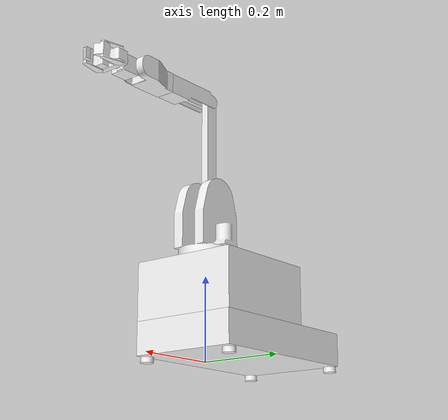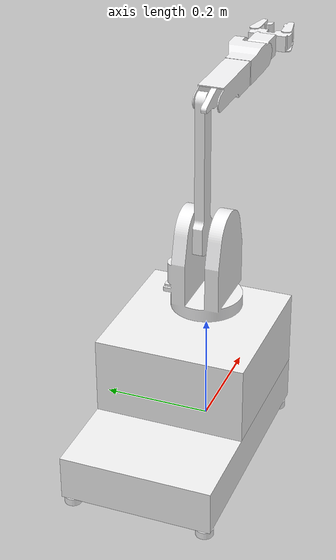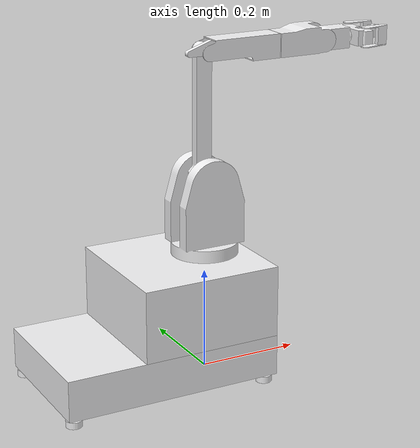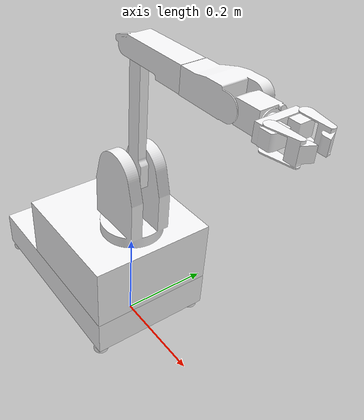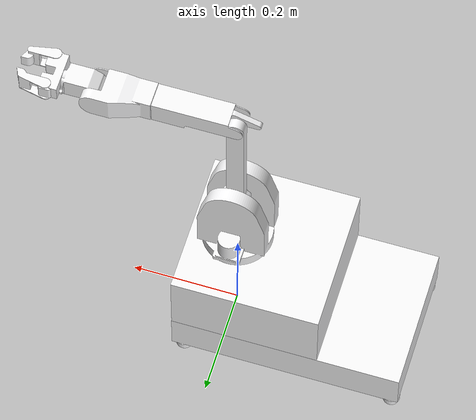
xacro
<?xml version="1.0" ?>
<robot name="kohaku" xmlns:xacro="http://ros.org/wiki/xacro">

    <!-- import gazebo setting -->
    <xacro:include filename="$(find kohaku_description)/urdf/kohaku.gazebo.xacro" />
    <!-- import materials -->
    <xacro:include filename="$(find kohaku_description)/urdf/materials.xacro" />
    <!-- import transmission -->
    <xacro:include filename="$(find kohaku_description)/urdf/kohaku_sim.trans.xacro" />
    <!-- import tree -->
    <xacro:include filename="$(find kohaku_description)/urdf/kohaku.mesh.xacro" />

</robot>

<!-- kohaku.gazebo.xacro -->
<robot name="kohaku_dualarm" xmlns:xacro="http://www.ros.org/wiki/xacro" >

<xacro:property name="body_color" value="Gazebo/Silver" />

<gazebo>
  <plugin name="control" filename="libgazebo_ros_control.so"/>
</gazebo>
<gazebo reference="base_link">
  <material>${body_color}</material>
  <mu1>0.2</mu1>
  <mu2>0.2</mu2>
  <selfCollide>true</selfCollide>
  <gravity>true</gravity>
</gazebo>

<gazebo reference="upperarm_link_1">
  <material>${body_color}</material>
  <mu1>0.2</mu1>
  <mu2>0.2</mu2>
  <selfCollide>true</selfCollide>
</gazebo>

<gazebo reference="forearm_link_1">
  <material>${body_color}</material>
  <mu1>0.2</mu1>
  <mu2>0.2</mu2>
  <selfCollide>true</selfCollide>
</gazebo>

<gazebo reference="wrist_yaw_link_1">
  <material>${body_color}</material>
  <mu1>0.2</mu1>
  <mu2>0.2</mu2>
  <selfCollide>true</selfCollide>
</gazebo>

<gazebo reference="wrist_pitch_link_1">
  <material>${body_color}</material>
  <mu1>0.2</mu1>
  <mu2>0.2</mu2>
  <selfCollide>true</selfCollide>
</gazebo>

<gazebo reference="hand_palm_link_1">
  <material>${body_color}</material>
  <mu1>0.2</mu1>
  <mu2>0.2</mu2>
  <selfCollide>true</selfCollide>
</gazebo>

<gazebo reference="r_finger_link_1">
  <material>${body_color}</material>
  <mu1>0.2</mu1>
  <mu2>0.2</mu2>
  <selfCollide>true</selfCollide>
</gazebo>

<gazebo reference="l_finger_link_1">
  <material>${body_color}</material>
  <mu1>0.2</mu1>
  <mu2>0.2</mu2>
  <selfCollide>true</selfCollide>
</gazebo>

<gazebo reference="shoulder_link_1">
  <material>${body_color}</material>
  <mu1>0.2</mu1>
  <mu2>0.2</mu2>
  <selfCollide>true</selfCollide>
</gazebo>

<gazebo reference="shoulder_link_1">
  <material>${body_color}</material>
  <mu1>0.2</mu1>
  <mu2>0.2</mu2>
  <selfCollide>true</selfCollide>
</gazebo>

</robot>

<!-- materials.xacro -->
<robot name="kohaku_dualarm" xmlns:xacro="http://www.ros.org/wiki/xacro" >

<material name="silver_default">
  <color rgba="0.700 0.700 0.700 1.000"/>
</material>
<material name="_">
  <color rgba="0.9607843137254902 0.9607843137254902 0.9647058823529412 1.0"/>
</material>

</robot>

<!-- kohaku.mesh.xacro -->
<robot name="kohaku" xmlns:xacro="http://www.ros.org/wiki/xacro">

<xacro:property name="camera_angle" value="1.23" />

<link name="world"/>
<joint name="world_to_base_link" type="fixed" >
  <parent link="world" />
  <child link="base_link" />
</joint>

<link name="base_link">
  <inertial>
    <origin xyz="-0.12 0.0 0.06" rpy="0 0 0"/>
    <mass value="10.0"/>
    <inertia ixx="0.101" iyy="0.194" izz="0.2148" ixy="0.0" iyz="0.0" ixz="0.0"/>
  </inertial>
  <visual>
    <origin xyz="-0.13 0 0.058" rpy="0 0 0"/>
    <geometry>
      <box size="0.43 0.27 0.08"/>
    </geometry>
    <material name="_"/>
  </visual>
  <visual>
    <origin xyz="-0.053 0 0.168" rpy="0 0 0"/>
    <geometry>
      <box size="0.275 0.27 0.14"/>
    </geometry>
    <material name="_"/>
  </visual>
  <visual>
    <origin xyz="0.065 0.12 0.009" rpy="0 0 0"/>
    <geometry>
      <cylinder length="0.013" radius="0.0155"/>
    </geometry>
    <material name="_"/>
  </visual>
  <visual>
    <origin xyz="0.065 -0.12 0.009" rpy="0 0 0"/>
    <geometry>
      <cylinder length="0.013" radius="0.0155"/>
    </geometry>
    <material name="_"/>
  </visual>
  <visual>
    <origin xyz="-0.330 0.12 0.009" rpy="0 0 0"/>
    <geometry>
      <cylinder length="0.013" radius="0.0155"/>
    </geometry>
    <material name="_"/>
  </visual>
  <visual>
    <origin xyz="-0.330 -0.12 0.009" rpy="0 0 0"/>
    <geometry>
      <cylinder length="0.013" radius="0.0155"/>
    </geometry>
    <material name="_"/>
  </visual>
  <collision>
    <origin xyz="-0.13 0 0.058" rpy="0 0 0"/>
    <geometry>
      <box size="0.43 0.27 0.08"/>
    </geometry>
  </collision>
  <collision>
    <origin xyz="-0.053 0 0.168" rpy="0 0 0"/>
    <geometry>
      <box size="0.275 0.27 0.14"/>
    </geometry>
  </collision>
  <collision>
    <origin xyz="0.065 0.12 0.009" rpy="0 0 0"/>
    <geometry>
      <cylinder length="0.013" radius="0.0155"/>
    </geometry>
  </collision>
  <collision>
    <origin xyz="0.065 -0.12 0.009" rpy="0 0 0"/>
    <geometry>
      <cylinder length="0.013" radius="0.0155"/>
    </geometry>
  </collision>
  <collision>
    <origin xyz="-0.330 0.12 0.009" rpy="0 0 0"/>
    <geometry>
      <cylinder length="0.013" radius="0.0155"/>
    </geometry>
  </collision>
  <collision>
    <origin xyz="-0.330 -0.12 0.009" rpy="0 0 0"/>
    <geometry>
      <cylinder length="0.013" radius="0.0155"/>
    </geometry>
  </collision>
</link>

<link name="shoulder_link">
  <inertial>
    <origin xyz="-0.0002483716377100001 0.002599957397357383 0.07656293547299953" rpy="0 0 0"/>
    <mass value="4.599230696027372"/>
    <inertia ixx="0.018029" iyy="0.017921" izz="0.01062" ixy="3.5e-05" iyz="0.000417" ixz="2.8e-05"/>
  </inertial>
  <visual>
    <origin xyz="0.015 -0.165 -0.360019" rpy="0 0 0"/>
    <geometry>
      <mesh filename="package://kohaku_description/meshes/left_shoulder_link_1.stl" scale="0.001 0.001 0.001"/>
    </geometry>
    <material name="_"/>
  </visual>
  <collision>
    <origin xyz="0.015 -0.165 -0.360019" rpy="0 0 0"/>
    <geometry>
      <mesh filename="package://kohaku_description/meshes/left_shoulder_link_1.stl" scale="0.001 0.001 0.001"/>
    </geometry>
  </collision>
</link>

<link name="upperarm_link">
  <inertial>
    <origin xyz="5.075907070683193e-05 0.0055551687418621265 0.06093355009099832" rpy="0 0 0"/>
    <mass value="1.6464184320412805"/>
    <inertia ixx="0.012435" iyy="0.01254" izz="0.000862" ixy="2e-06" iyz="-0.000385" ixz="5e-06"/>
  </inertial>
  <visual>
    <origin xyz="0.015 -0.16498 -0.502019" rpy="0 0 0"/>
    <geometry>
      <mesh filename="package://kohaku_description/meshes/left_upperarm_link_1.stl" scale="0.001 0.001 0.001"/>
    </geometry>
    <material name="_"/>
  </visual>
  <collision>
    <origin xyz="0.015 -0.16498 -0.502019" rpy="0 0 0"/>
    <geometry>
      <mesh filename="package://kohaku_description/meshes/left_upperarm_link_1.stl" scale="0.001 0.001 0.001"/>
    </geometry>
  </collision>
</link>

<link name="forearm_link">
  <inertial>
    <origin xyz="-0.0028629714869261927 -0.0029849490325699057 0.0665229146241868" rpy="0 0 0"/>
    <mass value="0.5147558278242914"/>
    <inertia ixx="0.001435" iyy="0.001418" izz="0.000194" ixy="1e-06" iyz="-5.7e-05" ixz="-4.1e-05"/>
  </inertial>
  <visual>
    <origin xyz="0.015 -0.164945 -0.752019" rpy="0 0 0"/>
    <geometry>
      <mesh filename="package://kohaku_description/meshes/left_forearm_link_1.stl" scale="0.001 0.001 0.001"/>
    </geometry>
    <material name="_"/>
  </visual>
  <collision>
    <origin xyz="0.015 -0.164945 -0.752019" rpy="0 0 0"/>
    <geometry>
      <mesh filename="package://kohaku_description/meshes/left_forearm_link_1.stl" scale="0.001 0.001 0.001"/>
    </geometry>
  </collision>
</link>

<link name="wrist_yaw_link">
  <inertial>
    <origin xyz="-0.0012123899494678285 0.00799629493788756 0.05493382214308451" rpy="0 0 0"/>
    <mass value="1.0197481013710548"/>
    <inertia ixx="0.001319" iyy="0.001172" izz="0.000585" ixy="7e-06" iyz="-0.000192" ixz="2.4e-05"/>
  </inertial>
  <visual>
    <origin xyz="0.015 -0.164874 -0.902019" rpy="0 0 0"/>
    <geometry>
      <mesh filename="package://kohaku_description/meshes/left_wrist_yaw_link_1.stl" scale="0.001 0.001 0.001"/>
    </geometry>
    <material name="_"/>
  </visual>
  <collision>
    <origin xyz="0.015 -0.164874 -0.902019" rpy="0 0 0"/>
    <geometry>
      <mesh filename="package://kohaku_description/meshes/left_wrist_yaw_link_1.stl" scale="0.001 0.001 0.001"/>
    </geometry>
  </collision>
</link>

<link name="wrist_pitch_link">
  <inertial>
    <origin xyz="4.65267917359076e-05 0.0005212096653225973 0.03002034855665814" rpy="0 0 0"/>
    <mass value="0.3895986537799301"/>
    <inertia ixx="0.000199" iyy="0.000188" izz="0.000103" ixy="-0.0" iyz="-6e-06" ixz="1e-06"/>
  </inertial>
  <visual>
    <origin xyz="0.015 -0.16486 -1.002019" rpy="0 0 0"/>
    <geometry>
      <mesh filename="package://kohaku_description/meshes/left_wrist_pitch_link_1.stl" scale="0.001 0.001 0.001"/>
    </geometry>
    <material name="_"/>
  </visual>
  <collision>
    <origin xyz="0.015 -0.16486 -1.002019" rpy="0 0 0"/>
    <geometry>
      <mesh filename="package://kohaku_description/meshes/left_wrist_pitch_link_1.stl" scale="0.001 0.001 0.001"/>
    </geometry>
  </collision>
</link>

<link name="hand_palm_link">
  <inertial>
    <origin xyz="0.0002318570856491807 -6.828401333128231e-05 0.017667823933595006" rpy="0 0 0"/>
    <mass value="0.32135536491616284"/>
    <inertia ixx="0.000221" iyy="5.4e-05" izz="0.000213" ixy="-0.0" iyz="-0.0" ixz="-0.0"/>
  </inertial>
  <visual>
    <origin xyz="0.015 -0.164851 -1.067019" rpy="0 0 0"/>
    <geometry>
      <mesh filename="package://kohaku_description/meshes/left_hand_palm_link_1.stl" scale="0.001 0.001 0.001"/>
    </geometry>
    <material name="_"/>
  </visual>
  <collision>
    <origin xyz="0.015 -0.164851 -1.067019" rpy="0 0 0"/>
    <geometry>
      <mesh filename="package://kohaku_description/meshes/left_hand_palm_link_1.stl" scale="0.001 0.001 0.001"/>
    </geometry>
  </collision>
</link>

<link name="r_finger_link">
  <inertial>
    <origin xyz="0.00015745354838760627 0.006862307384075728 0.03618445014614924" rpy="0 0 0"/>
    <mass value="0.07719980680600205"/>
    <inertia ixx="2e-05" iyy="2.8e-05" izz="1.5e-05" ixy="0.0" iyz="-4e-06" ixz="0.0"/>
  </inertial>
  <visual>
    <origin xyz="0.015 -0.133848 -1.089074" rpy="0 0 0"/>
    <geometry>
      <mesh filename="package://kohaku_description/meshes/left_r_finger_link_1.stl" scale="0.001 0.001 0.001"/>
    </geometry>
    <material name="_"/>
  </visual>
  <collision>
    <origin xyz="0.015 -0.133848 -1.089074" rpy="0 0 0"/>
    <geometry>
      <mesh filename="package://kohaku_description/meshes/left_r_finger_link_1.stl" scale="0.001 0.001 0.001"/>
    </geometry>
  </collision>
</link>

<link name="l_finger_link">
  <inertial>
    <origin xyz="-0.00015745364544006435 -0.006872074383145355 0.03618219144765589" rpy="0 0 0"/>
    <mass value="0.07719980680600244"/>
    <inertia ixx="2e-05" iyy="2.8e-05" izz="1.5e-05" ixy="0.0" iyz="4e-06" ixz="-0.0"/>
  </inertial>
  <visual>
    <origin xyz="0.015 -0.195848 -1.089083" rpy="0 0 0"/>
    <geometry>
      <mesh filename="package://kohaku_description/meshes/left_l_finger_link_1.stl" scale="0.001 0.001 0.001"/>
    </geometry>
    <material name="_"/>
  </visual>
  <collision>
    <origin xyz="0.015 -0.195848 -1.089083" rpy="0 0 0"/>
    <geometry>
      <mesh filename="package://kohaku_description/meshes/left_l_finger_link_1.stl" scale="0.001 0.001 0.001"/>
    </geometry>
  </collision>
</link>

<joint name="shoulder_yaw" type="revolute">
  <origin xyz="0.0 0.0 0.238" rpy="0 0 0"/>
  <parent link="base_link"/>
  <child link="shoulder_link"/>
  <axis xyz="0.0 -0.00014 1.0"/>
  <limit upper="2.7979" lower="-2.7979" effort="100" velocity="100"/>
</joint>

<joint name="shoulder_pitch" type="revolute">
  <origin xyz="0.0 -2e-05 0.142" rpy="0 0 0"/>
  <parent link="shoulder_link"/>
  <child link="upperarm_link"/>
  <axis xyz="-0.0 1.0 0.00014"/>
  <limit upper="2.35619" lower="-0.785" effort="100" velocity="100"/>
</joint>

<joint name="elbow_pitch" type="revolute">
  <origin xyz="0.0 -3.5e-05 0.25" rpy="0 0 0"/>
  <parent link="upperarm_link"/>
  <child link="forearm_link"/>
  <axis xyz="-0.0 1.0 0.00014"/>
  <limit upper="2.705" lower="0.436" effort="100" velocity="100"/>
</joint>

<joint name="wrist_yaw" type="revolute">
  <origin xyz="0.0 -7.1e-05 0.15" rpy="0 0 0"/>
  <parent link="forearm_link"/>
  <child link="wrist_yaw_link"/>
  <axis xyz="0.0 -0.00014 1.0"/>
  <limit upper="2.094" lower="-2.094" effort="100" velocity="100"/>
</joint>

<joint name="wrist_pitch" type="revolute">
  <origin xyz="0.0 -1.4e-05 0.1" rpy="0 0 0"/>
  <parent link="wrist_yaw_link"/>
  <child link="wrist_pitch_link"/>
  <axis xyz="-0.0 1.0 0.00014"/>
  <limit upper="1.57" lower="-1.57" effort="100" velocity="100"/>
</joint>

<joint name="hand_yaw" type="revolute">
  <origin xyz="0.0 -9e-06 0.065" rpy="0 0 0"/>
  <parent link="wrist_pitch_link"/>
  <child link="hand_palm_link"/>
  <axis xyz="-0.0 -0.00014 1.0"/>
  <limit upper="2.967" lower="-2.967" effort="100" velocity="100"/>
</joint>

<joint name="l_finger_joint" type="revolute">
  <origin xyz="0.0 0.030997 0.022064" rpy="0 0 0"/>
  <parent link="hand_palm_link"/>
  <child link="l_finger_link"/>
  <axis xyz="-1.0 -0.0 -0.0"/>
  <limit upper="1.57" lower="-0.9" effort="100" velocity="100"/>
</joint>

<joint name="r_finger_joint" type="revolute">
  <origin xyz="0.0 -0.031003 0.022055" rpy="0 0 0"/>
  <parent link="hand_palm_link"/>
  <child link="r_finger_link"/>
  <axis xyz="1.0 0.0 0.0"/>
  <limit upper="1.57" lower="-0.9" effort="100" velocity="100"/>
</joint>

</robot>
